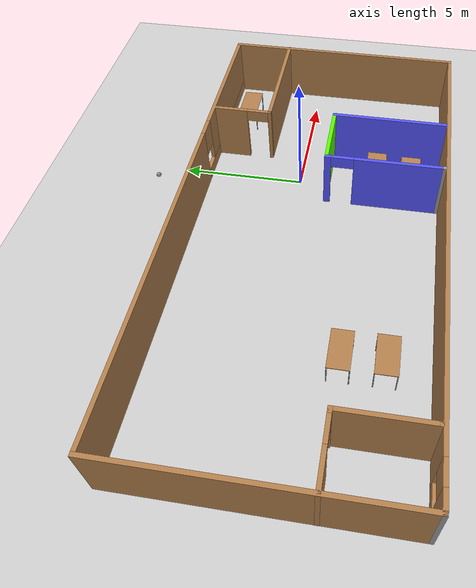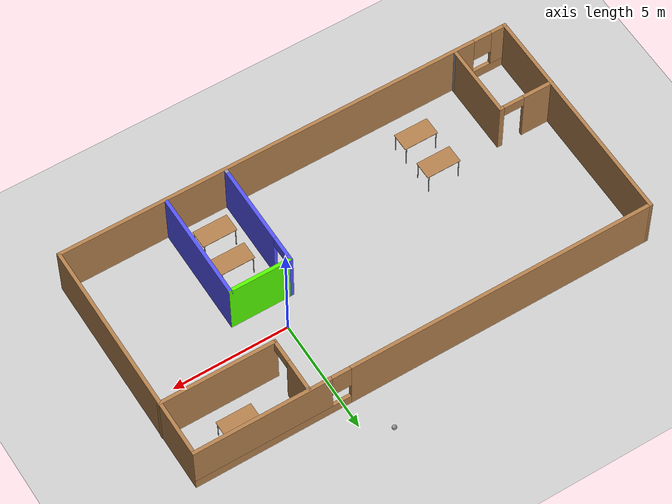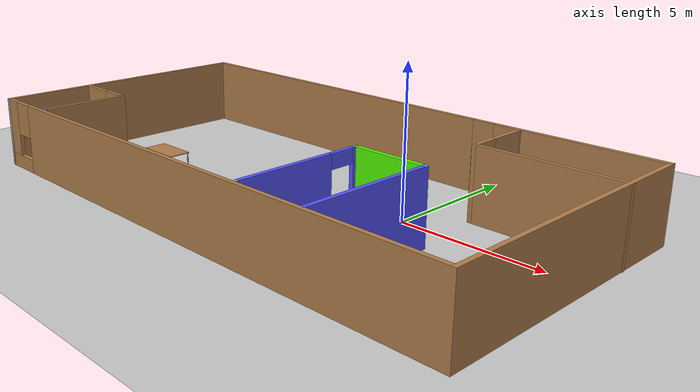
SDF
<sdf version="1.6">
 <world name="default">
  <model name="ground_plane">
   <static>1</static>
   <link name="link">
    <collision name="collision">
     <geometry><plane><normal>0 0 1</normal><size>100 100</size></plane></geometry>
     <surface>
      <contact><collide_bitmask>65535</collide_bitmask></contact>
      <friction><ode><mu>100</mu><mu2>50</mu2></ode></friction>
     </surface>
    </collision>
    <visual name="visual">
     <cast_shadows>0</cast_shadows>
     <geometry><plane><normal>0 0 1</normal><size>100 100</size></plane></geometry>
     <material>
      <script><uri>file://media/materials/scripts/gazebo.material</uri><name>Gazebo/Grey</name></script>
     </material>
    </visual>
   </link>
  </model>
  <model name="Room">
   <pose>-3.64539 -1.00112 0 0 -0 0</pose>
   <link name="Wall_0">
    <collision name="Wall_0_Collision">
     <geometry><box><size>10 0.15 2.5</size></box></geometry>
     <pose>0 0 1.25 0 -0 0</pose>
    </collision>
    <visual name="Wall_0_Visual">
     <pose>0 0 1.25 0 -0 0</pose>
     <geometry><box><size>10 0.15 2.5</size></box></geometry>
     <material>
      <script><uri>file://media/materials/scripts/gazebo.material</uri><name>Gazebo/Wood</name></script>
      <ambient>1 1 1 1</ambient>
     </material>
     <meta><layer>0</layer></meta>
    </visual>
    <pose>-9.93111 0 0 0 -0 1.5708</pose>
   </link>
   <link name="Wall_1">
    <pose>-0.006104 4.925 0 0 -0 0</pose>
    <visual name="Wall_1_Visual_0">
     <pose>-3.32452 0 1.25 0 -0 0</pose>
     <geometry><box><size>13.351 0.15 2.5</size></box></geometry>
     <material>
      <script><uri>file://media/materials/scripts/gazebo.material</uri><name>Gazebo/Wood</name></script>
      <ambient>1 1 1 1</ambient>
     </material>
     <meta><layer>0</layer></meta>
    </visual>
    <collision name="Wall_1_Collision_0">
     <geometry><box><size>13.351 0.15 2.5</size></box></geometry>
     <pose>-3.32452 0 1.25 0 -0 0</pose>
    </collision>
    <visual name="Wall_1_Visual_1">
     <pose>6.67548 0 0.25 0 -0 0</pose>
     <geometry><box><size>6.64904 0.15 0.5</size></box></geometry>
     <material>
      <script><uri>file://media/materials/scripts/gazebo.material</uri><name>Gazebo/Wood</name></script>
      <ambient>1 1 1 1</ambient>
     </material>
     <meta><layer>0</layer></meta>
    </visual>
    <collision name="Wall_1_Collision_1">
     <geometry><box><size>6.64904 0.15 0.5</size></box></geometry>
     <pose>6.67548 0 0.25 0 -0 0</pose>
    </collision>
    <visual name="Wall_1_Visual_2">
     <pose>7.07548 0 1.5 0 -0 0</pose>
     <geometry><box><size>5.84904 0.15 2</size></box></geometry>
     <material>
      <script><uri>file://media/materials/scripts/gazebo.material</uri><name>Gazebo/Wood</name></script>
      <ambient>1 1 1 1</ambient>
     </material>
     <meta><layer>0</layer></meta>
    </visual>
    <collision name="Wall_1_Collision_2">
     <geometry><box><size>5.84904 0.15 2</size></box></geometry>
     <pose>7.07548 0 1.5 0 -0 0</pose>
    </collision>
    <visual name="Wall_1_Visual_3">
     <pose>3.75096 0 1.9 0 -0 0</pose>
     <geometry><box><size>0.8 0.15 1.2</size></box></geometry>
     <material>
      <script><uri>file://media/materials/scripts/gazebo.material</uri><name>Gazebo/Wood</name></script>
      <ambient>1 1 1 1</ambient>
     </material>
     <meta><layer>0</layer></meta>
    </visual>
    <collision name="Wall_1_Collision_3">
     <geometry><box><size>0.8 0.15 1.2</size></box></geometry>
     <pose>3.75096 0 1.9 0 -0 0</pose>
    </collision>
   </link>
   <link name="Wall_10">
    <pose>5.08809 3.69806 0 0 -0 1.5708</pose>
    <visual name="Wall_10_Visual_0">
     <pose>-1.18282 0 1.25 0 -0 0</pose>
     <geometry><box><size>0.134363 0.15 2.5</size></box></geometry>
     <material>
      <script><uri>file://media/materials/scripts/gazebo.material</uri><name>Gazebo/Wood</name></script>
      <ambient>1 1 1 1</ambient>
     </material>
     <meta><layer>0</layer></meta>
    </visual>
    <collision name="Wall_10_Collision_0">
     <geometry><box><size>0.134363 0.15 2.5</size></box></geometry>
     <pose>-1.18282 0 1.25 0 -0 0</pose>
    </collision>
    <visual name="Wall_10_Visual_1">
     <pose>0.517181 0 1.25 0 -0 0</pose>
     <geometry><box><size>1.46564 0.15 2.5</size></box></geometry>
     <material>
      <script><uri>file://media/materials/scripts/gazebo.material</uri><name>Gazebo/Wood</name></script>
      <ambient>1 1 1 1</ambient>
     </material>
     <meta><layer>0</layer></meta>
    </visual>
    <collision name="Wall_10_Collision_1">
     <geometry><box><size>1.46564 0.15 2.5</size></box></geometry>
     <pose>0.517181 0 1.25 0 -0 0</pose>
    </collision>
    <visual name="Wall_10_Visual_2">
     <pose>-0.665637 0 2.25 0 -0 0</pose>
     <geometry><box><size>0.9 0.15 0.5</size></box></geometry>
     <material>
      <script><uri>file://media/materials/scripts/gazebo.material</uri><name>Gazebo/Wood</name></script>
      <ambient>1 1 1 1</ambient>
     </material>
     <meta><layer>0</layer></meta>
    </visual>
    <collision name="Wall_10_Collision_2">
     <geometry><box><size>0.9 0.15 0.5</size></box></geometry>
     <pose>-0.665637 0 2.25 0 -0 0</pose>
    </collision>
   </link>
   <link name="Wall_11">
    <collision name="Wall_11_Collision">
     <geometry><box><size>0.15 0.15 2.5</size></box></geometry>
     <pose>0 0 1.25 0 -0 0</pose>
    </collision>
    <visual name="Wall_11_Visual">
     <pose>0 0 1.25 0 -0 0</pose>
     <geometry><box><size>0.15 0.15 2.5</size></box></geometry>
     <material>
      <script><uri>file://media/materials/scripts/gazebo.material</uri><name>Gazebo/Grey</name></script>
      <ambient>1 1 1 1</ambient>
     </material>
     <meta><layer>0</layer></meta>
    </visual>
    <pose>5.08809 4.87306 0 0 -0 0</pose>
   </link>
   <link name="Wall_13">
    <pose>-8.76309 -1.69668 0 0 -0 0</pose>
    <visual name="Wall_13_Visual_0">
     <pose>-0.559693 0 1.25 0 -0 0</pose>
     <geometry><box><size>1.38061 0.15 2.5</size></box></geometry>
     <material>
      <script><uri>file://media/materials/scripts/gazebo.material</uri><name>Gazebo/Wood</name></script>
      <ambient>1 1 1 1</ambient>
     </material>
     <meta><layer>0</layer></meta>
    </visual>
    <collision name="Wall_13_Collision_0">
     <geometry><box><size>1.38061 0.15 2.5</size></box></geometry>
     <pose>-0.559693 0 1.25 0 -0 0</pose>
    </collision>
    <visual name="Wall_13_Visual_1">
     <pose>1.14031 0 1.25 0 -0 0</pose>
     <geometry><box><size>0.219387 0.15 2.5</size></box></geometry>
     <material>
      <script><uri>file://media/materials/scripts/gazebo.material</uri><name>Gazebo/Wood</name></script>
      <ambient>1 1 1 1</ambient>
     </material>
     <meta><layer>0</layer></meta>
    </visual>
    <collision name="Wall_13_Collision_1">
     <geometry><box><size>0.219387 0.15 2.5</size></box></geometry>
     <pose>1.14031 0 1.25 0 -0 0</pose>
    </collision>
    <visual name="Wall_13_Visual_2">
     <pose>0.580613 0 2.25 0 -0 0</pose>
     <geometry><box><size>0.9 0.15 0.5</size></box></geometry>
     <material>
      <script><uri>file://media/materials/scripts/gazebo.material</uri><name>Gazebo/Wood</name></script>
      <ambient>1 1 1 1</ambient>
     </material>
     <meta><layer>0</layer></meta>
    </visual>
    <collision name="Wall_13_Collision_2">
     <geometry><box><size>0.9 0.15 0.5</size></box></geometry>
     <pose>0.580613 0 2.25 0 -0 0</pose>
    </collision>
   </link>
   <link name="Wall_14">
    <collision name="Wall_14_Collision">
     <geometry><box><size>3.25 0.15 2.5</size></box></geometry>
     <pose>0 0 1.25 0 -0 0</pose>
    </collision>
    <visual name="Wall_14_Visual">
     <pose>0 0 1.25 0 -0 0</pose>
     <geometry><box><size>3.25 0.15 2.5</size></box></geometry>
     <material>
      <script><uri>file://media/materials/scripts/gazebo.material</uri><name>Gazebo/Wood</name></script>
      <ambient>1 1 1 1</ambient>
     </material>
     <meta><layer>0</layer></meta>
    </visual>
    <pose>-7.58809 -3.24668 0 0 0 -1.5708</pose>
   </link>
   <link name="Wall_15">
    <collision name="Wall_15_Collision">
     <geometry><box><size>0.15 0.15 2.5</size></box></geometry>
     <pose>0 0 1.25 0 -0 0</pose>
    </collision>
    <visual name="Wall_15_Visual">
     <pose>0 0 1.25 0 -0 0</pose>
     <geometry><box><size>0.15 0.15 2.5</size></box></geometry>
     <material>
      <script><uri>file://media/materials/scripts/gazebo.material</uri><name>Gazebo/Grey</name></script>
      <ambient>1 1 1 1</ambient>
     </material>
     <meta><layer>0</layer></meta>
    </visual>
    <pose>-7.58809 -4.79668 0 0 -0 0</pose>
   </link>
   <link name="Wall_2">
    <collision name="Wall_2_Collision">
     <geometry><box><size>10 0.15 2.5</size></box></geometry>
     <pose>0 0 1.25 0 -0 0</pose>
    </collision>
    <visual name="Wall_2_Visual">
     <pose>0 0 1.25 0 -0 0</pose>
     <geometry><box><size>10 0.15 2.5</size></box></geometry>
     <material>
      <script><uri>file://media/materials/scripts/gazebo.material</uri><name>Gazebo/Wood</name></script>
      <ambient>1 1 1 1</ambient>
     </material>
     <meta><layer>0</layer></meta>
    </visual>
    <pose>9.9189 0 0 0 0 -1.5708</pose>
   </link>
   <link name="Wall_3">
    <pose>-0.006104 -4.925 0 0 -0 3.14159</pose>
    <visual name="Wall_3_Visual_0">
     <pose>-0.762629 0 1.25 0 -0 0</pose>
     <geometry><box><size>18.4747 0.15 2.5</size></box></geometry>
     <material>
      <script><uri>file://media/materials/scripts/gazebo.material</uri><name>Gazebo/Wood</name></script>
      <ambient>1 1 1 1</ambient>
     </material>
     <meta><layer>0</layer></meta>
    </visual>
    <collision name="Wall_3_Collision_0">
     <geometry><box><size>18.4747 0.15 2.5</size></box></geometry>
     <pose>-0.762629 0 1.25 0 -0 0</pose>
    </collision>
    <visual name="Wall_3_Visual_1">
     <pose>9.23737 0 0.25 0 -0 0</pose>
     <geometry><box><size>1.52526 0.15 0.5</size></box></geometry>
     <material>
      <script><uri>file://media/materials/scripts/gazebo.material</uri><name>Gazebo/Wood</name></script>
      <ambient>1 1 1 1</ambient>
     </material>
     <meta><layer>0</layer></meta>
    </visual>
    <collision name="Wall_3_Collision_1">
     <geometry><box><size>1.52526 0.15 0.5</size></box></geometry>
     <pose>9.23737 0 0.25 0 -0 0</pose>
    </collision>
    <visual name="Wall_3_Visual_2">
     <pose>9.63737 0 1.5 0 -0 0</pose>
     <geometry><box><size>0.725258 0.15 2</size></box></geometry>
     <material>
      <script><uri>file://media/materials/scripts/gazebo.material</uri><name>Gazebo/Wood</name></script>
      <ambient>1 1 1 1</ambient>
     </material>
     <meta><layer>0</layer></meta>
    </visual>
    <collision name="Wall_3_Collision_2">
     <geometry><box><size>0.725258 0.15 2</size></box></geometry>
     <pose>9.63737 0 1.5 0 -0 0</pose>
    </collision>
    <visual name="Wall_3_Visual_3">
     <pose>8.87474 0 1.9 0 -0 0</pose>
     <geometry><box><size>0.8 0.15 1.2</size></box></geometry>
     <material>
      <script><uri>file://media/materials/scripts/gazebo.material</uri><name>Gazebo/Wood</name></script>
      <ambient>1 1 1 1</ambient>
     </material>
     <meta><layer>0</layer></meta>
    </visual>
    <collision name="Wall_3_Collision_3">
     <geometry><box><size>0.8 0.15 1.2</size></box></geometry>
     <pose>8.87474 0 1.9 0 -0 0</pose>
    </collision>
   </link>
   <link name="Wall_4">
    <collision name="Wall_4_Collision">
     <geometry><box><size>0.15 0.15 2.5</size></box></geometry>
     <pose>0 0 1.25 0 -0 0</pose>
    </collision>
    <visual name="Wall_4_Visual">
     <pose>0 0 1.25 0 -0 0</pose>
     <geometry><box><size>0.15 0.15 2.5</size></box></geometry>
     <material>
      <script><uri>file://media/materials/scripts/gazebo.material</uri><name>Gazebo/Grey</name></script>
      <ambient>1 1 1 1</ambient>
     </material>
     <meta><layer>0</layer></meta>
    </visual>
    <pose>-9.93111 -4.925 0 0 -0 0</pose>
   </link>
   <link name="Wall_6">
    <collision name="Wall_6_Collision">
     <geometry><box><size>5 0.15 2.5</size></box></geometry>
     <pose>0 0 1.25 0 -0 0</pose>
    </collision>
    <visual name="Wall_6_Visual">
     <pose>0 0 1.25 0 -0 0</pose>
     <geometry><box><size>5 0.15 2.5</size></box></geometry>
     <material>
      <script><uri>file://media/materials/scripts/gazebo.material</uri><name>Gazebo/Wood</name></script>
      <ambient>1 1 1 1</ambient>
     </material>
     <meta><layer>0</layer></meta>
    </visual>
    <pose>7.51309 2.52306 0 0 -0 3.14159</pose>
   </link>
   <static>1</static>
  </model>
  <model name="Table">
   <model name="table">
    <static>1</static>
    <link name="link">
     <collision name="surface">
      <pose>0 0 1 0 -0 0</pose>
      <geometry><box><size>1.5 0.8 0.03</size></box></geometry>
      <surface><friction><ode><mu>0.6</mu><mu2>0.6</mu2></ode></friction></surface>
     </collision>
     <visual name="visual1">
      <pose>0 0 1 0 -0 0</pose>
      <geometry><box><size>1.5 0.8 0.03</size></box></geometry>
      <material>
       <script><uri>file://media/materials/scripts/gazebo.material</uri><name>Gazebo/Wood</name></script>
      </material>
     </visual>
     <collision name="front_left_leg">
      <pose>0.68 0.38 0.5 0 -0 0</pose>
      <geometry><cylinder><radius>0.02</radius><length>1</length></cylinder></geometry>
     </collision>
     <visual name="front_left_leg">
      <pose>0.68 0.38 0.5 0 -0 0</pose>
      <geometry><cylinder><radius>0.02</radius><length>1</length></cylinder></geometry>
      <material>
       <script><uri>file://media/materials/scripts/gazebo.material</uri><name>Gazebo/Grey</name></script>
      </material>
     </visual>
     <collision name="front_right_leg">
      <pose>0.68 -0.38 0.5 0 -0 0</pose>
      <geometry><cylinder><radius>0.02</radius><length>1</length></cylinder></geometry>
     </collision>
     <visual name="front_right_leg">
      <pose>0.68 -0.38 0.5 0 -0 0</pose>
      <geometry><cylinder><radius>0.02</radius><length>1</length></cylinder></geometry>
      <material>
       <script><uri>file://media/materials/scripts/gazebo.material</uri><name>Gazebo/Grey</name></script>
      </material>
     </visual>
     <collision name="back_right_leg">
      <pose>-0.68 -0.38 0.5 0 -0 0</pose>
      <geometry><cylinder><radius>0.02</radius><length>1</length></cylinder></geometry>
     </collision>
     <visual name="back_right_leg">
      <pose>-0.68 -0.38 0.5 0 -0 0</pose>
      <geometry><cylinder><radius>0.02</radius><length>1</length></cylinder></geometry>
      <material>
       <script><uri>file://media/materials/scripts/gazebo.material</uri><name>Gazebo/Grey</name></script>
      </material>
     </visual>
     <collision name="back_left_leg">
      <pose>-0.68 0.38 0.5 0 -0 0</pose>
      <geometry><cylinder><radius>0.02</radius><length>1</length></cylinder></geometry>
     </collision>
     <visual name="back_left_leg">
      <pose>-0.68 0.38 0.5 0 -0 0</pose>
      <geometry><cylinder><radius>0.02</radius><length>1</length></cylinder></geometry>
      <material>
       <script><uri>file://media/materials/scripts/gazebo.material</uri><name>Gazebo/Grey</name></script>
      </material>
     </visual>
    </link>
    <pose>0 2e-06 0 0 -0 0</pose>
   </model>
   <static>0</static>
   <pose>3.87122 2.94059 0 0 -0 0</pose>
  </model>
  <model name="Walls2">
   <pose>0.415125 -3.49627 0 0 -0 0</pose>
   <link name="Wall_17">
    <pose>-1.3 0 0 0 -0 1.5708</pose>
    <visual name="Wall_17_Visual_0">
     <pose>-0.580785 0 1.25 0 -0 0</pose>
     <geometry><box><size>3.58843 0.15 2.5</size></box></geometry>
     <material>
      <script><uri>file://media/materials/scripts/gazebo.material</uri><name>Gazebo/Grey</name></script>
      <ambient>0.333333 0.333333 1 1</ambient>
     </material>
     <meta><layer>0</layer></meta>
    </visual>
    <collision name="Wall_17_Collision_0">
     <geometry><box><size>3.58843 0.15 2.5</size></box></geometry>
     <pose>-0.580785 0 1.25 0 -0 0</pose>
    </collision>
    <visual name="Wall_17_Visual_1">
     <pose>2.24422 0 1.25 0 -0 0</pose>
     <geometry><box><size>0.261571 0.15 2.5</size></box></geometry>
     <material>
      <script><uri>file://media/materials/scripts/gazebo.material</uri><name>Gazebo/Grey</name></script>
      <ambient>0.333333 0.333333 1 1</ambient>
     </material>
     <meta><layer>0</layer></meta>
    </visual>
    <collision name="Wall_17_Collision_1">
     <geometry><box><size>0.261571 0.15 2.5</size></box></geometry>
     <pose>2.24422 0 1.25 0 -0 0</pose>
    </collision>
    <visual name="Wall_17_Visual_2">
     <pose>1.66343 0 2.25 0 -0 0</pose>
     <geometry><box><size>0.9 0.15 0.5</size></box></geometry>
     <material>
      <script><uri>file://media/materials/scripts/gazebo.material</uri><name>Gazebo/Grey</name></script>
      <ambient>0.333333 0.333333 1 1</ambient>
     </material>
     <meta><layer>0</layer></meta>
    </visual>
    <collision name="Wall_17_Collision_2">
     <geometry><box><size>0.9 0.15 0.5</size></box></geometry>
     <pose>1.66343 0 2.25 0 -0 0</pose>
    </collision>
   </link>
   <link name="Wall_18">
    <collision name="Wall_18_Collision">
     <geometry><box><size>2.75 0.15 2.5</size></box></geometry>
     <pose>0 0 1.25 0 -0 0</pose>
    </collision>
    <visual name="Wall_18_Visual">
     <pose>0 0 1.25 0 -0 0</pose>
     <geometry><box><size>2.75 0.15 2.5</size></box></geometry>
     <material>
      <script><uri>file://media/materials/scripts/gazebo.material</uri><name>Gazebo/Grey</name></script>
      <ambient>0.333333 1 0 1</ambient>
     </material>
     <meta><layer>0</layer></meta>
    </visual>
    <pose>0 2.3 0 0 -0 0</pose>
   </link>
   <link name="Wall_19">
    <collision name="Wall_19_Collision">
     <geometry><box><size>4.75 0.15 2.5</size></box></geometry>
     <pose>0 0 1.25 0 -0 0</pose>
    </collision>
    <visual name="Wall_19_Visual">
     <pose>0 0 1.25 0 -0 0</pose>
     <geometry><box><size>4.75 0.15 2.5</size></box></geometry>
     <material>
      <script><uri>file://media/materials/scripts/gazebo.material</uri><name>Gazebo/Grey</name></script>
      <ambient>0.333333 0.333333 1 1</ambient>
     </material>
     <meta><layer>0</layer></meta>
    </visual>
    <pose>1.3 0 0 0 0 -1.5708</pose>
   </link>
   <link name="Wall_21">
    <collision name="Wall_21_Collision">
     <geometry><box><size>0.15 0.15 2.5</size></box></geometry>
     <pose>0 0 1.25 0 -0 0</pose>
    </collision>
    <visual name="Wall_21_Visual">
     <pose>0 0 1.25 0 -0 0</pose>
     <geometry><box><size>0.15 0.15 2.5</size></box></geometry>
     <material>
      <script><uri>file://media/materials/scripts/gazebo.material</uri><name>Gazebo/Grey</name></script>
      <ambient>1 1 1 1</ambient>
     </material>
     <meta><layer>0</layer></meta>
    </visual>
    <pose>-1.3 -2.3 0 0 -0 0</pose>
   </link>
   <static>1</static>
  </model>
  <model name="Table_0">
   <model name="table">
    <static>1</static>
    <link name="link">
     <collision name="surface">
      <pose>0 0 1 0 -0 0</pose>
      <geometry><box><size>1.5 0.8 0.03</size></box></geometry>
      <surface><friction><ode><mu>0.6</mu><mu2>0.6</mu2></ode></friction></surface>
     </collision>
     <visual name="visual1">
      <pose>0 0 1 0 -0 0</pose>
      <geometry><box><size>1.5 0.8 0.03</size></box></geometry>
      <material>
       <script><uri>file://media/materials/scripts/gazebo.material</uri><name>Gazebo/Wood</name></script>
      </material>
     </visual>
     <collision name="front_left_leg">
      <pose>0.68 0.38 0.5 0 -0 0</pose>
      <geometry><cylinder><radius>0.02</radius><length>1</length></cylinder></geometry>
     </collision>
     <visual name="front_left_leg">
      <pose>0.68 0.38 0.5 0 -0 0</pose>
      <geometry><cylinder><radius>0.02</radius><length>1</length></cylinder></geometry>
      <material>
       <script><uri>file://media/materials/scripts/gazebo.material</uri><name>Gazebo/Grey</name></script>
      </material>
     </visual>
     <collision name="front_right_leg">
      <pose>0.68 -0.38 0.5 0 -0 0</pose>
      <geometry><cylinder><radius>0.02</radius><length>1</length></cylinder></geometry>
     </collision>
     <visual name="front_right_leg">
      <pose>0.68 -0.38 0.5 0 -0 0</pose>
      <geometry><cylinder><radius>0.02</radius><length>1</length></cylinder></geometry>
      <material>
       <script><uri>file://media/materials/scripts/gazebo.material</uri><name>Gazebo/Grey</name></script>
      </material>
     </visual>
     <collision name="back_right_leg">
      <pose>-0.68 -0.38 0.5 0 -0 0</pose>
      <geometry><cylinder><radius>0.02</radius><length>1</length></cylinder></geometry>
     </collision>
     <visual name="back_right_leg">
      <pose>-0.68 -0.38 0.5 0 -0 0</pose>
      <geometry><cylinder><radius>0.02</radius><length>1</length></cylinder></geometry>
      <material>
       <script><uri>file://media/materials/scripts/gazebo.material</uri><name>Gazebo/Grey</name></script>
      </material>
     </visual>
     <collision name="back_left_leg">
      <pose>-0.68 0.38 0.5 0 -0 0</pose>
      <geometry><cylinder><radius>0.02</radius><length>1</length></cylinder></geometry>
     </collision>
     <visual name="back_left_leg">
      <pose>-0.68 0.38 0.5 0 -0 0</pose>
      <geometry><cylinder><radius>0.02</radius><length>1</length></cylinder></geometry>
      <material>
       <script><uri>file://media/materials/scripts/gazebo.material</uri><name>Gazebo/Grey</name></script>
      </material>
     </visual>
    </link>
    <pose>0 2e-06 0 0 -0 0</pose>
   </model>
   <static>0</static>
   <pose>0.422685 -4.5826 0 0 -0 0</pose>
  </model>
  <model name="Table_1">
   <model name="table">
    <static>1</static>
    <link name="link">
     <collision name="surface">
      <pose>0 0 1 0 -0 0</pose>
      <geometry><box><size>1.5 0.8 0.03</size></box></geometry>
      <surface><friction><ode><mu>0.6</mu><mu2>0.6</mu2></ode></friction></surface>
     </collision>
     <visual name="visual1">
      <pose>0 0 1 0 -0 0</pose>
      <geometry><box><size>1.5 0.8 0.03</size></box></geometry>
      <material>
       <script><uri>file://media/materials/scripts/gazebo.material</uri><name>Gazebo/Wood</name></script>
      </material>
     </visual>
     <collision name="front_left_leg">
      <pose>0.68 0.38 0.5 0 -0 0</pose>
      <geometry><cylinder><radius>0.02</radius><length>1</length></cylinder></geometry>
     </collision>
     <visual name="front_left_leg">
      <pose>0.68 0.38 0.5 0 -0 0</pose>
      <geometry><cylinder><radius>0.02</radius><length>1</length></cylinder></geometry>
      <material>
       <script><uri>file://media/materials/scripts/gazebo.material</uri><name>Gazebo/Grey</name></script>
      </material>
     </visual>
     <collision name="front_right_leg">
      <pose>0.68 -0.38 0.5 0 -0 0</pose>
      <geometry><cylinder><radius>0.02</radius><length>1</length></cylinder></geometry>
     </collision>
     <visual name="front_right_leg">
      <pose>0.68 -0.38 0.5 0 -0 0</pose>
      <geometry><cylinder><radius>0.02</radius><length>1</length></cylinder></geometry>
      <material>
       <script><uri>file://media/materials/scripts/gazebo.material</uri><name>Gazebo/Grey</name></script>
      </material>
     </visual>
     <collision name="back_right_leg">
      <pose>-0.68 -0.38 0.5 0 -0 0</pose>
      <geometry><cylinder><radius>0.02</radius><length>1</length></cylinder></geometry>
     </collision>
     <visual name="back_right_leg">
      <pose>-0.68 -0.38 0.5 0 -0 0</pose>
      <geometry><cylinder><radius>0.02</radius><length>1</length></cylinder></geometry>
      <material>
       <script><uri>file://media/materials/scripts/gazebo.material</uri><name>Gazebo/Grey</name></script>
      </material>
     </visual>
     <collision name="back_left_leg">
      <pose>-0.68 0.38 0.5 0 -0 0</pose>
      <geometry><cylinder><radius>0.02</radius><length>1</length></cylinder></geometry>
     </collision>
     <visual name="back_left_leg">
      <pose>-0.68 0.38 0.5 0 -0 0</pose>
      <geometry><cylinder><radius>0.02</radius><length>1</length></cylinder></geometry>
      <material>
       <script><uri>file://media/materials/scripts/gazebo.material</uri><name>Gazebo/Grey</name></script>
      </material>
     </visual>
    </link>
    <pose>0 2e-06 0 0 -0 0</pose>
   </model>
   <static>0</static>
   <pose>0.499119 -3.15276 0 0 -0 0</pose>
  </model>
  <model name="Table_2">
   <model name="table">
    <static>1</static>
    <link name="link">
     <collision name="surface">
      <pose>0 0 1 0 -0 0</pose>
      <geometry><box><size>1.5 0.8 0.03</size></box></geometry>
      <surface><friction><ode><mu>0.6</mu><mu2>0.6</mu2></ode></friction></surface>
     </collision>
     <visual name="visual1">
      <pose>0 0 1 0 -0 0</pose>
      <geometry><box><size>1.5 0.8 0.03</size></box></geometry>
      <material>
       <script><uri>file://media/materials/scripts/gazebo.material</uri><name>Gazebo/Wood</name></script>
      </material>
     </visual>
     <collision name="front_left_leg">
      <pose>0.68 0.38 0.5 0 -0 0</pose>
      <geometry><cylinder><radius>0.02</radius><length>1</length></cylinder></geometry>
     </collision>
     <visual name="front_left_leg">
      <pose>0.68 0.38 0.5 0 -0 0</pose>
      <geometry><cylinder><radius>0.02</radius><length>1</length></cylinder></geometry>
      <material>
       <script><uri>file://media/materials/scripts/gazebo.material</uri><name>Gazebo/Grey</name></script>
      </material>
     </visual>
     <collision name="front_right_leg">
      <pose>0.68 -0.38 0.5 0 -0 0</pose>
      <geometry><cylinder><radius>0.02</radius><length>1</length></cylinder></geometry>
     </collision>
     <visual name="front_right_leg">
      <pose>0.68 -0.38 0.5 0 -0 0</pose>
      <geometry><cylinder><radius>0.02</radius><length>1</length></cylinder></geometry>
      <material>
       <script><uri>file://media/materials/scripts/gazebo.material</uri><name>Gazebo/Grey</name></script>
      </material>
     </visual>
     <collision name="back_right_leg">
      <pose>-0.68 -0.38 0.5 0 -0 0</pose>
      <geometry><cylinder><radius>0.02</radius><length>1</length></cylinder></geometry>
     </collision>
     <visual name="back_right_leg">
      <pose>-0.68 -0.38 0.5 0 -0 0</pose>
      <geometry><cylinder><radius>0.02</radius><length>1</length></cylinder></geometry>
      <material>
       <script><uri>file://media/materials/scripts/gazebo.material</uri><name>Gazebo/Grey</name></script>
      </material>
     </visual>
     <collision name="back_left_leg">
      <pose>-0.68 0.38 0.5 0 -0 0</pose>
      <geometry><cylinder><radius>0.02</radius><length>1</length></cylinder></geometry>
     </collision>
     <visual name="back_left_leg">
      <pose>-0.68 0.38 0.5 0 -0 0</pose>
      <geometry><cylinder><radius>0.02</radius><length>1</length></cylinder></geometry>
      <material>
       <script><uri>file://media/materials/scripts/gazebo.material</uri><name>Gazebo/Grey</name></script>
      </material>
     </visual>
    </link>
    <pose>0 2e-06 0 0 -0 0</pose>
   </model>
   <static>0</static>
   <pose>-8.43143 -4.27467 0 0 -0 0</pose>
  </model>
  <model name="Table_3">
   <model name="table">
    <static>1</static>
    <link name="link">
     <collision name="surface">
      <pose>0 0 1 0 -0 0</pose>
      <geometry><box><size>1.5 0.8 0.03</size></box></geometry>
      <surface><friction><ode><mu>0.6</mu><mu2>0.6</mu2></ode></friction></surface>
     </collision>
     <visual name="visual1">
      <pose>0 0 1 0 -0 0</pose>
      <geometry><box><size>1.5 0.8 0.03</size></box></geometry>
      <material>
       <script><uri>file://media/materials/scripts/gazebo.material</uri><name>Gazebo/Wood</name></script>
      </material>
     </visual>
     <collision name="front_left_leg">
      <pose>0.68 0.38 0.5 0 -0 0</pose>
      <geometry><cylinder><radius>0.02</radius><length>1</length></cylinder></geometry>
     </collision>
     <visual name="front_left_leg">
      <pose>0.68 0.38 0.5 0 -0 0</pose>
      <geometry><cylinder><radius>0.02</radius><length>1</length></cylinder></geometry>
      <material>
       <script><uri>file://media/materials/scripts/gazebo.material</uri><name>Gazebo/Grey</name></script>
      </material>
     </visual>
     <collision name="front_right_leg">
      <pose>0.68 -0.38 0.5 0 -0 0</pose>
      <geometry><cylinder><radius>0.02</radius><length>1</length></cylinder></geometry>
     </collision>
     <visual name="front_right_leg">
      <pose>0.68 -0.38 0.5 0 -0 0</pose>
      <geometry><cylinder><radius>0.02</radius><length>1</length></cylinder></geometry>
      <material>
       <script><uri>file://media/materials/scripts/gazebo.material</uri><name>Gazebo/Grey</name></script>
      </material>
     </visual>
     <collision name="back_right_leg">
      <pose>-0.68 -0.38 0.5 0 -0 0</pose>
      <geometry><cylinder><radius>0.02</radius><length>1</length></cylinder></geometry>
     </collision>
     <visual name="back_right_leg">
      <pose>-0.68 -0.38 0.5 0 -0 0</pose>
      <geometry><cylinder><radius>0.02</radius><length>1</length></cylinder></geometry>
      <material>
       <script><uri>file://media/materials/scripts/gazebo.material</uri><name>Gazebo/Grey</name></script>
      </material>
     </visual>
     <collision name="back_left_leg">
      <pose>-0.68 0.38 0.5 0 -0 0</pose>
      <geometry><cylinder><radius>0.02</radius><length>1</length></cylinder></geometry>
     </collision>
     <visual name="back_left_leg">
      <pose>-0.68 0.38 0.5 0 -0 0</pose>
      <geometry><cylinder><radius>0.02</radius><length>1</length></cylinder></geometry>
      <material>
       <script><uri>file://media/materials/scripts/gazebo.material</uri><name>Gazebo/Grey</name></script>
      </material>
     </visual>
    </link>
    <pose>0 2e-06 0 0 -0 0</pose>
   </model>
   <static>0</static>
   <pose>-8.45923 -2.71656 0 0 -0 0</pose>
  </model>
  <model name="my_ball">
   <link name="link_0">
    <inertial>
     <mass>1</mass>
     <inertia><ixx>0.1</ixx><ixy>0</ixy><ixz>0</ixz><iyy>0.1</iyy><iyz>0</iyz><izz>0.1</izz></inertia>
    </inertial>
    <visual name="visual">
     <geometry><sphere><radius>0.1</radius></sphere></geometry>
     <material>
      <lighting>1</lighting>
      <script><uri>file://media/materials/scripts/gazebo.material</uri><name>Gazebo/Grey</name></script>
      <shader type="pixel"><normal_map>__default__</normal_map></shader>
      <ambient>1 1 1 1</ambient>
      <diffuse>1 1 1 1</diffuse>
      <specular>1 1 1 1</specular>
      <emissive>1 1 1 1</emissive>
     </material>
    </visual>
    <collision name="collision">
     <geometry><sphere><radius>0.1</radius></sphere></geometry>
     <surface>
      <friction>
       <ode><mu>1</mu><mu2>1</mu2><fdir1>0 0 0</fdir1><slip1>0</slip1><slip2>0</slip2></ode>
       <torsional>
        <coefficient>1</coefficient>
        <patch_radius>0</patch_radius>
        <surface_radius>0</surface_radius>
        <use_patch_radius>1</use_patch_radius>
        <ode><slip>0</slip></ode>
       </torsional>
      </friction>
      <bounce><restitution_coefficient>0</restitution_coefficient><threshold>1e+06</threshold></bounce>
      <contact>
       <collide_without_contact>0</collide_without_contact>
       <collide_without_contact_bitmask>1</collide_without_contact_bitmask>
       <collide_bitmask>1</collide_bitmask>
       <ode>
        <soft_cfm>0</soft_cfm>
        <soft_erp>0.2</soft_erp>
        <kp>1e+13</kp>
        <kd>1</kd>
        <max_vel>0.01</max_vel>
        <min_depth>0</min_depth>
       </ode>
       <bullet>
        <split_impulse>1</split_impulse>
        <split_impulse_penetration_threshold>-0.01</split_impulse_penetration_threshold>
        <soft_cfm>0</soft_cfm>
        <soft_erp>0.2</soft_erp>
        <kp>1e+13</kp>
        <kd>1</kd>
       </bullet>
      </contact>
     </surface>
    </collision>
   </link>
   <static>0</static>
   <pose>-0.940545 5.94041 0.5 0 -0 0</pose>
  </model>
 </world>
</sdf>
